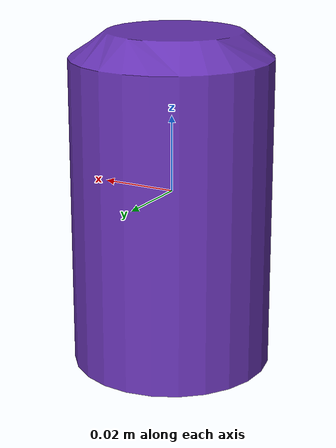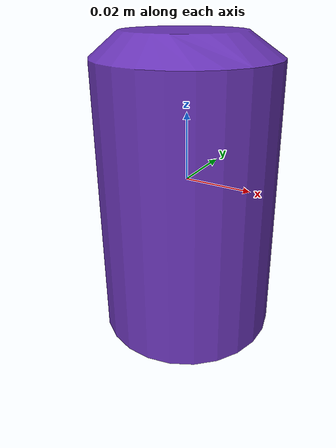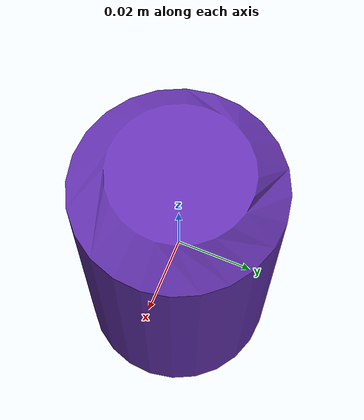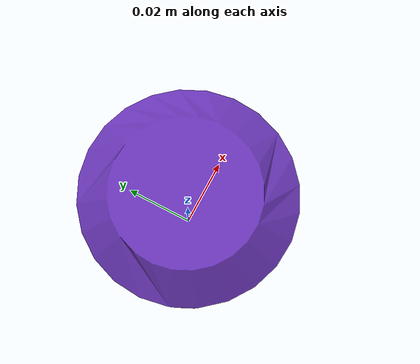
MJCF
<mujoco model="top_watertight_tiny">
  <default>
    <default group="2" type="mesh" contype="0" conaffinity="0">
      <geom group="2" type="mesh" contype="0" conaffinity="0"/>
    </default>
    <default group="3" type="mesh">
      <geom group="3" type="mesh"/>
    </default>
  </default>
  <asset>
    <mesh file="top_watertight_tiny.obj"/>
    <mesh file="top_watertight_tiny_collision_0.obj"/>
  </asset>
  <worldbody>
    <body name="top_watertight_tiny">
      <freejoint/>
      <geom mesh="top_watertight_tiny" group="2" type="mesh" rgba="0.4 0.2 0.7 1" contype="0" conaffinity="0"/>
      <geom mesh="top_watertight_tiny_collision_0" rgba="0.05319207427556194 0.8079308911453528 0.2006588312832035 1" group="3" type="mesh"/>
    </body>
  </worldbody>
</mujoco>
